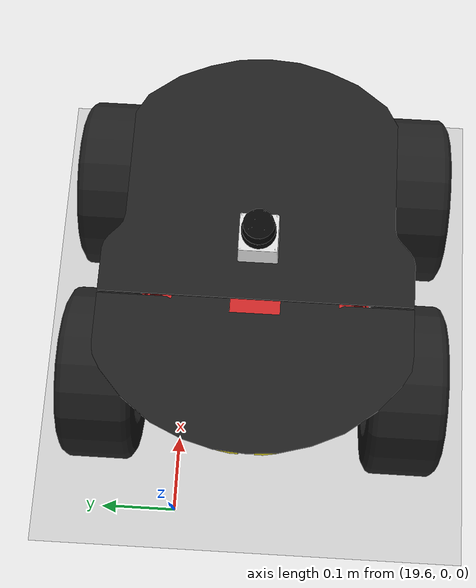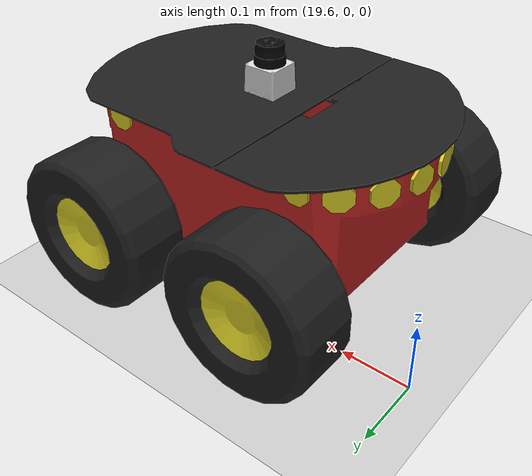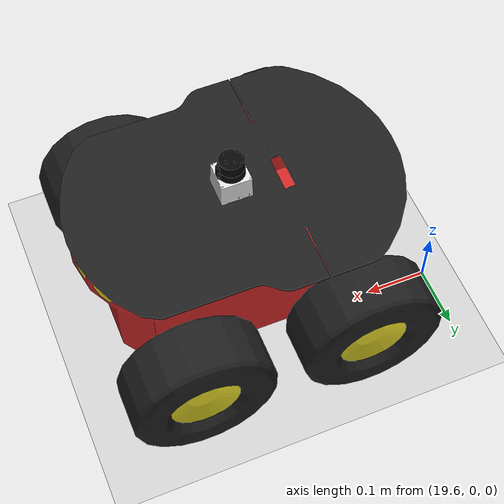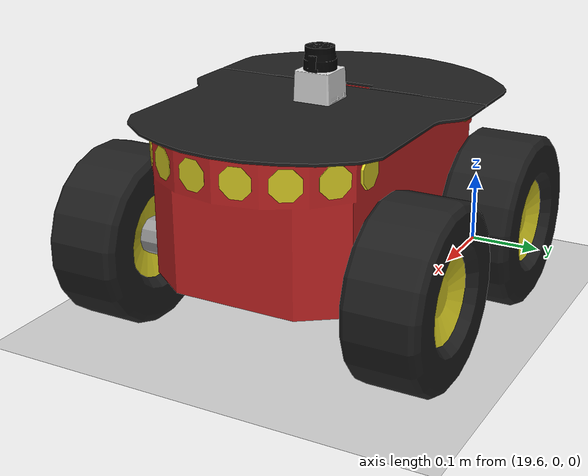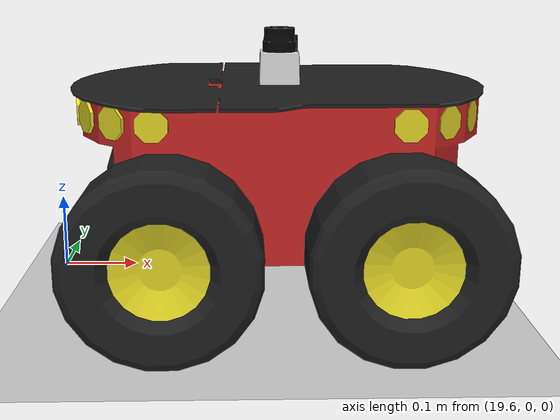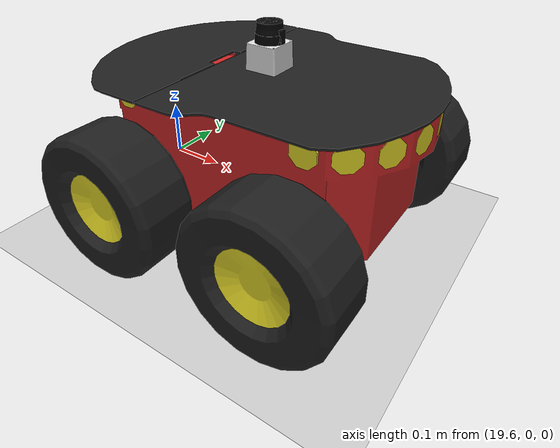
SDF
<sdf version="1.6">
 <world name="default">
  <model name="ground_plane">
   <static>1</static>
   <link name="link">
    <collision name="collision">
     <geometry><plane><normal>0 0 1</normal><size>100 100</size></plane></geometry>
     <surface><friction><ode><mu>100</mu><mu2>50</mu2></ode></friction></surface>
    </collision>
    <visual name="visual">
     <cast_shadows>0</cast_shadows>
     <geometry><plane><normal>0 0 1</normal><size>100 100</size></plane></geometry>
     <material>
      <script><uri>file://media/materials/scripts/gazebo.material</uri><name>Gazebo/Grey</name></script>
     </material>
    </visual>
   </link>
  </model>
  <model name="pioneer1">
   <link name="base_link">
    <inertial>
     <pose>-0.095186 0 0.174739 0 -0 0</pose>
     <mass>22.6</mass>
     <inertia>
      <ixx>11.365</ixx>
      <ixy>-6.60484e-19</ixy>
      <ixz>0.00451317</ixz>
      <iyy>11.5163</iyy>
      <iyz>1.2125e-18</iyz>
      <izz>11.391</izz>
     </inertia>
    </inertial>
    <collision name="base_link_collision">
     <pose>0 0 0.177 0 -0 0</pose>
     <geometry>
      <mesh>
       <scale>1 1 1</scale>
       <uri>/home/andrej/ANPL/infrastructure/base_ws/src/amr-ros-config/description/meshes/p3at_meshes/chassis.stl</uri>
      </mesh>
     </geometry>
    </collision>
    <collision name="base_link_fixed_joint_lump__hokuyo_link_collision_1">
     <pose>0 0 0.31 0 -0 0</pose>
     <geometry><box><size>0.1 0.1 0.1</size></box></geometry>
    </collision>
    <collision name="base_link_fixed_joint_lump__p3at_back_left_axle_collision_2">
     <pose>-0.134 0.156 0.111 0 -0 0</pose>
     <geometry>
      <mesh>
       <scale>1 1 1</scale>
       <uri>/home/andrej/ANPL/infrastructure/base_ws/src/amr-ros-config/description/meshes/p3at_meshes/axle.stl</uri>
      </mesh>
     </geometry>
    </collision>
    <collision name="base_link_fixed_joint_lump__p3at_back_left_hub_collision_3">
     <pose>-0.134 0.197 0.111 0 -0 0</pose>
     <geometry>
      <mesh>
       <scale>1 1 1</scale>
       <uri>/home/andrej/ANPL/infrastructure/base_ws/src/amr-ros-config/description/meshes/p3at_meshes/left_hubcap.stl</uri>
      </mesh>
     </geometry>
    </collision>
    <collision name="base_link_fixed_joint_lump__p3at_back_right_axle_collision_4">
     <pose>-0.134 -0.156 0.111 0 -0 0</pose>
     <geometry>
      <mesh>
       <scale>1 1 1</scale>
       <uri>/home/andrej/ANPL/infrastructure/base_ws/src/amr-ros-config/description/meshes/p3at_meshes/axle.stl</uri>
      </mesh>
     </geometry>
    </collision>
    <collision name="base_link_fixed_joint_lump__p3at_back_right_hub_collision_5">
     <pose>-0.134 -0.197 0.111 0 -0 0</pose>
     <geometry>
      <mesh>
       <scale>1 1 1</scale>
       <uri>/home/andrej/ANPL/infrastructure/base_ws/src/amr-ros-config/description/meshes/p3at_meshes/right_hubcap.stl</uri>
      </mesh>
     </geometry>
    </collision>
    <visual name="base_link_visual">
     <pose>0 0 0.177 0 -0 0</pose>
     <geometry>
      <mesh>
       <scale>1 1 1</scale>
       <uri>/home/andrej/ANPL/infrastructure/base_ws/src/amr-ros-config/description/meshes/p3at_meshes/chassis.stl</uri>
      </mesh>
     </geometry>
     <material>
      <script><name>Gazebo/Red</name><uri>file://media/materials/scripts/gazebo.material</uri></script>
     </material>
    </visual>
    <visual name="base_link_fixed_joint_lump__back_sonar_visual_1">
     <pose>-0.187 0 0.247 0 -0 0</pose>
     <geometry>
      <mesh>
       <scale>1 1 1</scale>
       <uri>/home/andrej/ANPL/infrastructure/base_ws/src/amr-ros-config/description/meshes/p3at_meshes/back_sonar.stl</uri>
      </mesh>
     </geometry>
     <material>
      <script><name>Gazebo/Yellow</name><uri>file://media/materials/scripts/gazebo.material</uri></script>
     </material>
    </visual>
    <visual name="base_link_fixed_joint_lump__front_sonar_visual_2">
     <pose>0.193 0 0.25 0 -0 0</pose>
     <geometry>
      <mesh>
       <scale>1 1 1</scale>
       <uri>/home/andrej/ANPL/infrastructure/base_ws/src/amr-ros-config/description/meshes/p3at_meshes/front_sonar.stl</uri>
      </mesh>
     </geometry>
     <material>
      <script><name>Gazebo/Yellow</name><uri>file://media/materials/scripts/gazebo.material</uri></script>
     </material>
    </visual>
    <visual name="base_link_fixed_joint_lump__p3at_front_left_axle_visual_3">
     <pose>0.135 0.156 0.111 0 -0 0</pose>
     <geometry>
      <mesh>
       <scale>1 1 1</scale>
       <uri>/home/andrej/ANPL/infrastructure/base_ws/src/amr-ros-config/description/meshes/p3at_meshes/axle.stl</uri>
      </mesh>
     </geometry>
     <material>
      <script><name>Gazebo/Grey</name><uri>file://media/materials/scripts/gazebo.material</uri></script>
     </material>
    </visual>
    <visual name="base_link_fixed_joint_lump__p3at_front_left_hub_visual_4">
     <pose>0.135 0.197 0.111 0 -0 0</pose>
     <geometry>
      <mesh>
       <scale>1 1 1</scale>
       <uri>/home/andrej/ANPL/infrastructure/base_ws/src/amr-ros-config/description/meshes/p3at_meshes/left_hubcap.stl</uri>
      </mesh>
     </geometry>
     <material>
      <script><name>Gazebo/Yellow</name><uri>file://media/materials/scripts/gazebo.material</uri></script>
     </material>
    </visual>
    <visual name="base_link_fixed_joint_lump__p3at_front_right_axle_visual_5">
     <pose>0.135 -0.156 0.111 0 -0 0</pose>
     <geometry>
      <mesh>
       <scale>1 1 1</scale>
       <uri>/home/andrej/ANPL/infrastructure/base_ws/src/amr-ros-config/description/meshes/p3at_meshes/axle.stl</uri>
      </mesh>
     </geometry>
     <material>
      <script><name>Gazebo/Grey</name><uri>file://media/materials/scripts/gazebo.material</uri></script>
     </material>
    </visual>
    <visual name="base_link_fixed_joint_lump__p3at_front_right_hub_visual_6">
     <pose>0.135 -0.197 0.111 0 -0 0</pose>
     <geometry>
      <mesh>
       <scale>1 1 1</scale>
       <uri>/home/andrej/ANPL/infrastructure/base_ws/src/amr-ros-config/description/meshes/p3at_meshes/right_hubcap.stl</uri>
      </mesh>
     </geometry>
     <material>
      <script><name>Gazebo/Yellow</name><uri>file://media/materials/scripts/gazebo.material</uri></script>
     </material>
    </visual>
    <visual name="base_link_fixed_joint_lump__top_plate_visual_7">
     <pose>0.003 0 0.274 0 -0 0</pose>
     <geometry>
      <mesh>
       <scale>1 1 1</scale>
       <uri>/home/andrej/ANPL/infrastructure/base_ws/src/amr-ros-config/description/meshes/p3at_meshes/top.stl</uri>
      </mesh>
     </geometry>
     <material>
      <script><name>Gazebo/Black</name><uri>file://media/materials/scripts/gazebo.material</uri></script>
     </material>
    </visual>
    <visual name="base_link_fixed_joint_lump__hokuyo_link_visual_8">
     <pose>0 0 0.31 0 -0 0</pose>
     <geometry>
      <mesh>
       <scale>1 1 1</scale>
       <uri>/home/andrej/ANPL/infrastructure/base_ws/src/anpl_inf/gazebo_models/hokuyo/meshes/hokuyo.dae</uri>
      </mesh>
     </geometry>
     <material><script><uri>__default__</uri><name>__default__</name></script></material>
    </visual>
    <visual name="base_link_fixed_joint_lump__p3at_back_left_axle_visual_9">
     <pose>-0.134 0.156 0.111 0 -0 0</pose>
     <geometry>
      <mesh>
       <scale>1 1 1</scale>
       <uri>/home/andrej/ANPL/infrastructure/base_ws/src/amr-ros-config/description/meshes/p3at_meshes/axle.stl</uri>
      </mesh>
     </geometry>
     <material>
      <script><name>Gazebo/Grey</name><uri>file://media/materials/scripts/gazebo.material</uri></script>
     </material>
    </visual>
    <visual name="base_link_fixed_joint_lump__p3at_back_left_hub_visual_10">
     <pose>-0.134 0.197 0.111 0 -0 0</pose>
     <geometry>
      <mesh>
       <scale>1 1 1</scale>
       <uri>/home/andrej/ANPL/infrastructure/base_ws/src/amr-ros-config/description/meshes/p3at_meshes/left_hubcap.stl</uri>
      </mesh>
     </geometry>
     <material>
      <script><name>Gazebo/Yellow</name><uri>file://media/materials/scripts/gazebo.material</uri></script>
     </material>
    </visual>
    <visual name="base_link_fixed_joint_lump__p3at_back_right_axle_visual_11">
     <pose>-0.134 -0.156 0.111 0 -0 0</pose>
     <geometry>
      <mesh>
       <scale>1 1 1</scale>
       <uri>/home/andrej/ANPL/infrastructure/base_ws/src/amr-ros-config/description/meshes/p3at_meshes/axle.stl</uri>
      </mesh>
     </geometry>
     <material>
      <script><name>Gazebo/Grey</name><uri>file://media/materials/scripts/gazebo.material</uri></script>
     </material>
    </visual>
    <visual name="base_link_fixed_joint_lump__p3at_back_right_hub_visual_12">
     <pose>-0.134 -0.197 0.111 0 -0 0</pose>
     <geometry>
      <mesh>
       <scale>1 1 1</scale>
       <uri>/home/andrej/ANPL/infrastructure/base_ws/src/amr-ros-config/description/meshes/p3at_meshes/right_hubcap.stl</uri>
      </mesh>
     </geometry>
     <material>
      <script><name>Gazebo/Yellow</name><uri>file://media/materials/scripts/gazebo.material</uri></script>
     </material>
    </visual>
    <sensor name="head_hokuyo_sensor" type="ray">
     <visualize>0</visualize>
     <update_rate>40</update_rate>
     <ray>
      <scan>
       <horizontal>
        <samples>720</samples>
        <resolution>1</resolution>
        <min_angle>-2.35619</min_angle>
        <max_angle>2.35619</max_angle>
       </horizontal>
       <vertical><samples>1</samples><min_angle>0</min_angle><max_angle>0</max_angle></vertical>
      </scan>
      <range><min>0.1</min><max>30</max><resolution>0.01</resolution></range>
      <noise><type>gaussian</type><mean>0</mean><stddev>0.01</stddev></noise>
     </ray>
     <plugin name="gazebo_ros_head_hokuyo_controller" filename="libgazebo_ros_laser.so">
      <topicName>laser/scan</topicName>
      <frameName>hokuyo_link</frameName>
      <robotNamespace>/pioneer1/</robotNamespace>
     </plugin>
     <pose>0 0 0.31 0 -0 0</pose>
    </sensor>
   </link>
   <link name="p3at_front_left_wheel">
    <pose>0.135 0.197 0.111 0 -0 0</pose>
    <inertial>
     <mass>1.2</mass>
     <inertia>
      <ixx>0.0124118</ixx>
      <ixy>0</ixy>
      <ixz>0</ixz>
      <iyy>0.0152182</iyy>
      <iyz>0</iyz>
      <izz>0.011764</izz>
     </inertia>
    </inertial>
    <collision name="p3at_front_left_wheel_collision">
     <pose>0 0 0 -1.5708 0 0</pose>
     <geometry><cylinder><length>0.075</length><radius>0.111</radius></cylinder></geometry>
     <surface>
      <contact><ode><kp>1e+06</kp><kd>100</kd><max_vel>1</max_vel><min_depth>0</min_depth></ode></contact>
      <friction><ode><mu>1</mu><mu2>1</mu2></ode></friction>
     </surface>
    </collision>
    <visual name="p3at_front_left_wheel_visual">
     <geometry>
      <mesh>
       <scale>1 1 1</scale>
       <uri>/home/andrej/ANPL/infrastructure/base_ws/src/amr-ros-config/description/meshes/p3at_meshes/wheel.stl</uri>
      </mesh>
     </geometry>
     <material>
      <script><name>Gazebo/Black</name><uri>file://media/materials/scripts/gazebo.material</uri></script>
     </material>
    </visual>
   </link>
   <joint name="p3at_front_left_wheel_joint" type="revolute">
    <child>p3at_front_left_wheel</child>
    <parent>base_link</parent>
    <axis>
     <xyz>0 1 0</xyz>
     <limit><lower>-1e+16</lower><upper>1e+16</upper></limit>
     <dynamics><spring_reference>0</spring_reference><spring_stiffness>0</spring_stiffness></dynamics>
     <use_parent_model_frame>1</use_parent_model_frame>
    </axis>
   </joint>
   <link name="p3at_front_right_wheel">
    <pose>0.135 -0.197 0.111 0 -0 0</pose>
    <inertial>
     <mass>1.2</mass>
     <inertia>
      <ixx>0.0124118</ixx>
      <ixy>0</ixy>
      <ixz>0</ixz>
      <iyy>0.0152182</iyy>
      <iyz>0</iyz>
      <izz>0.011764</izz>
     </inertia>
    </inertial>
    <collision name="p3at_front_right_wheel_collision">
     <pose>0 0 0 -1.5708 0 0</pose>
     <geometry><cylinder><length>0.075</length><radius>0.111</radius></cylinder></geometry>
     <surface>
      <contact><ode><kp>1e+06</kp><kd>100</kd><max_vel>1</max_vel><min_depth>0</min_depth></ode></contact>
      <friction><ode><mu>1</mu><mu2>1</mu2></ode></friction>
     </surface>
    </collision>
    <visual name="p3at_front_right_wheel_visual">
     <geometry>
      <mesh>
       <scale>1 1 1</scale>
       <uri>/home/andrej/ANPL/infrastructure/base_ws/src/amr-ros-config/description/meshes/p3at_meshes/wheel.stl</uri>
      </mesh>
     </geometry>
     <material>
      <script><name>Gazebo/Black</name><uri>file://media/materials/scripts/gazebo.material</uri></script>
     </material>
    </visual>
   </link>
   <joint name="p3at_front_right_wheel_joint" type="revolute">
    <child>p3at_front_right_wheel</child>
    <parent>base_link</parent>
    <axis>
     <xyz>0 1 0</xyz>
     <limit><lower>-1e+16</lower><upper>1e+16</upper></limit>
     <dynamics><spring_reference>0</spring_reference><spring_stiffness>0</spring_stiffness></dynamics>
     <use_parent_model_frame>1</use_parent_model_frame>
    </axis>
   </joint>
   <link name="p3at_back_left_wheel">
    <pose>-0.134 0.197 0.111 0 -0 0</pose>
    <inertial>
     <mass>1.2</mass>
     <inertia>
      <ixx>0.0124118</ixx>
      <ixy>0</ixy>
      <ixz>0</ixz>
      <iyy>0.0152182</iyy>
      <iyz>0</iyz>
      <izz>0.011764</izz>
     </inertia>
    </inertial>
    <collision name="p3at_back_left_wheel_collision">
     <pose>0 0 0 -1.5708 0 0</pose>
     <geometry><cylinder><length>0.075</length><radius>0.111</radius></cylinder></geometry>
     <surface>
      <contact><ode><kp>1e+06</kp><kd>100</kd><max_vel>1</max_vel><min_depth>0</min_depth></ode></contact>
      <friction><ode><mu>1</mu><mu2>1</mu2></ode></friction>
     </surface>
    </collision>
    <visual name="p3at_back_left_wheel_visual">
     <geometry>
      <mesh>
       <scale>1 1 1</scale>
       <uri>/home/andrej/ANPL/infrastructure/base_ws/src/amr-ros-config/description/meshes/p3at_meshes/wheel.stl</uri>
      </mesh>
     </geometry>
     <material>
      <script><name>Gazebo/Black</name><uri>file://media/materials/scripts/gazebo.material</uri></script>
     </material>
    </visual>
   </link>
   <joint name="p3at_back_left_wheel_joint" type="revolute">
    <child>p3at_back_left_wheel</child>
    <parent>base_link</parent>
    <axis>
     <xyz>0 1 0</xyz>
     <limit><lower>-1e+16</lower><upper>1e+16</upper></limit>
     <dynamics><spring_reference>0</spring_reference><spring_stiffness>0</spring_stiffness></dynamics>
     <use_parent_model_frame>1</use_parent_model_frame>
    </axis>
   </joint>
   <link name="p3at_back_right_wheel">
    <pose>-0.134 -0.197 0.111 0 -0 0</pose>
    <inertial>
     <mass>1.2</mass>
     <inertia>
      <ixx>0.0124118</ixx>
      <ixy>0</ixy>
      <ixz>0</ixz>
      <iyy>0.0152182</iyy>
      <iyz>0</iyz>
      <izz>0.011764</izz>
     </inertia>
    </inertial>
    <collision name="p3at_back_right_wheel_collision">
     <pose>0 0 0 -1.5708 0 0</pose>
     <geometry><cylinder><length>0.075</length><radius>0.111</radius></cylinder></geometry>
     <surface>
      <contact><ode><kp>1e+06</kp><kd>100</kd><max_vel>1</max_vel><min_depth>0</min_depth></ode></contact>
      <friction><ode><mu>1</mu><mu2>1</mu2></ode></friction>
     </surface>
    </collision>
    <visual name="p3at_back_right_wheel_visual">
     <geometry>
      <mesh>
       <scale>1 1 1</scale>
       <uri>/home/andrej/ANPL/infrastructure/base_ws/src/amr-ros-config/description/meshes/p3at_meshes/wheel.stl</uri>
      </mesh>
     </geometry>
     <material>
      <script><name>Gazebo/Black</name><uri>file://media/materials/scripts/gazebo.material</uri></script>
     </material>
    </visual>
   </link>
   <joint name="p3at_back_right_wheel_joint" type="revolute">
    <child>p3at_back_right_wheel</child>
    <parent>base_link</parent>
    <axis>
     <xyz>0 1 0</xyz>
     <limit><lower>-1e+16</lower><upper>1e+16</upper></limit>
     <dynamics><spring_reference>0</spring_reference><spring_stiffness>0</spring_stiffness></dynamics>
     <use_parent_model_frame>1</use_parent_model_frame>
    </axis>
   </joint>
   <static>0</static>
   <plugin name="skid_steer_drive_controller" filename="libgazebo_ros_skid_steer_drive.so">
    <updateRate>100.0</updateRate>
    <robotNamespace>pioneer1</robotNamespace>
    <leftFrontJoint>p3at_front_left_wheel_joint</leftFrontJoint>
    <rightFrontJoint>p3at_front_right_wheel_joint</rightFrontJoint>
    <leftRearJoint>p3at_back_left_wheel_joint</leftRearJoint>
    <rightRearJoint>p3at_back_right_wheel_joint</rightRearJoint>
    <wheelSeparation>0.4</wheelSeparation>
    <wheelDiameter>0.215</wheelDiameter>
    <robotBaseFrame>base_link</robotBaseFrame>
    <MaxForce>5.0</MaxForce>
    <torque>200</torque>
    <commandTopic>cmd_vel</commandTopic>
    <odometryTopic>odom</odometryTopic>
    <odometryFrame>odom</odometryFrame>
    <broadcastTF>1</broadcastTF>
    <covariance_x>0.0001</covariance_x>
    <covariance_y>0.0001</covariance_y>
    <covariance_yaw>0.01</covariance_yaw>
   </plugin>
   <pose>19.9 -0.1 -3.3e-05 -0 -0.000145 3.14</pose>
  </model>
 </world>
</sdf>
